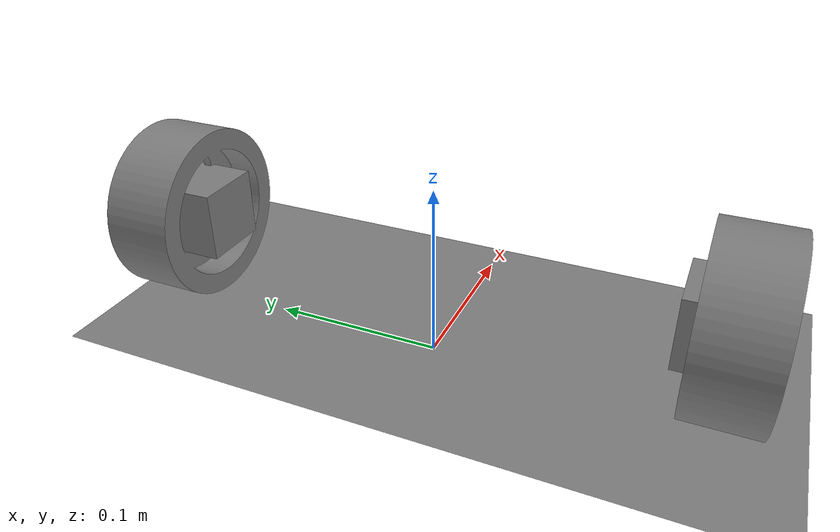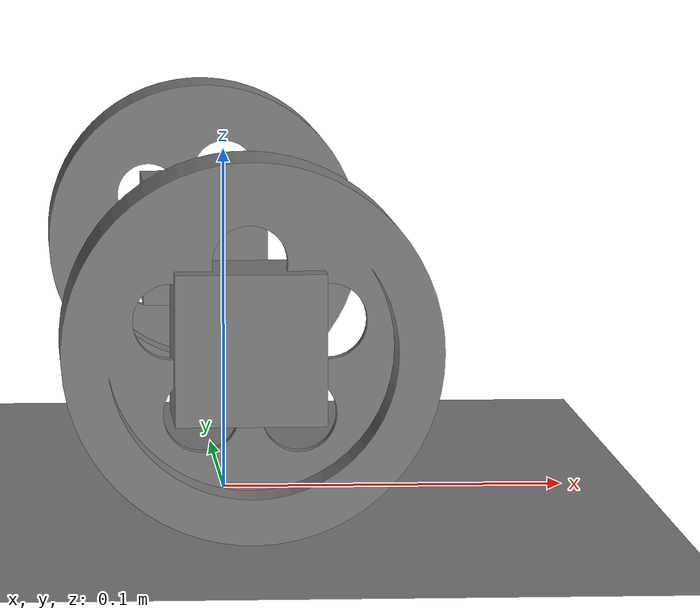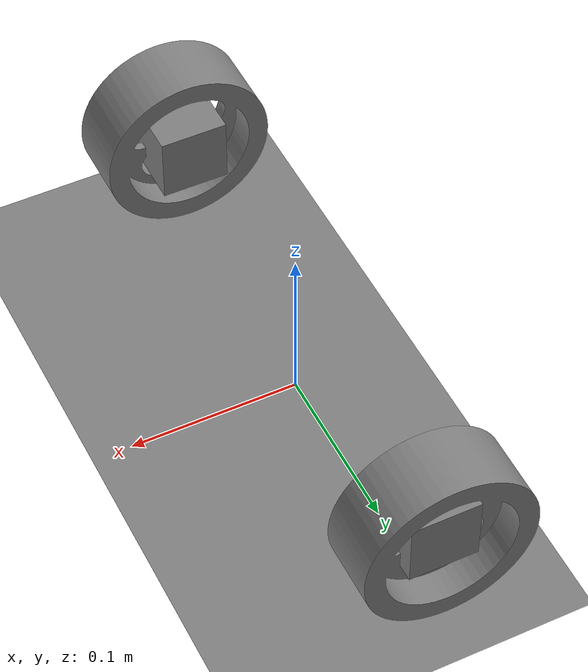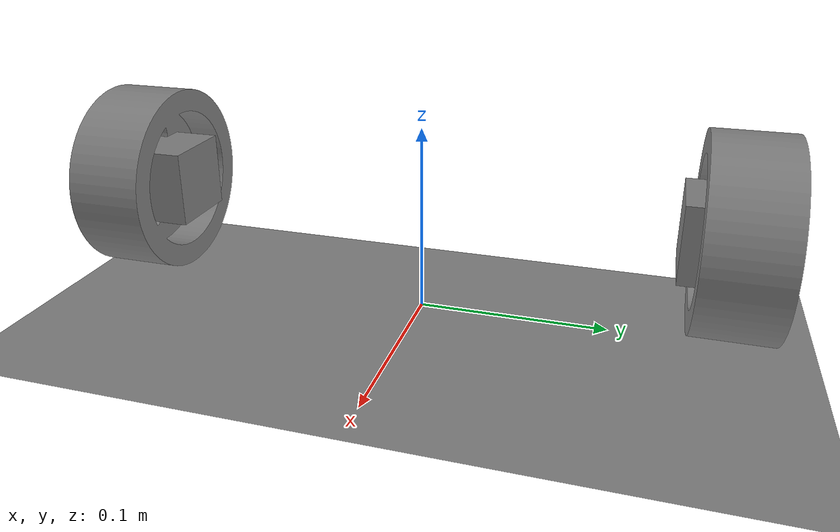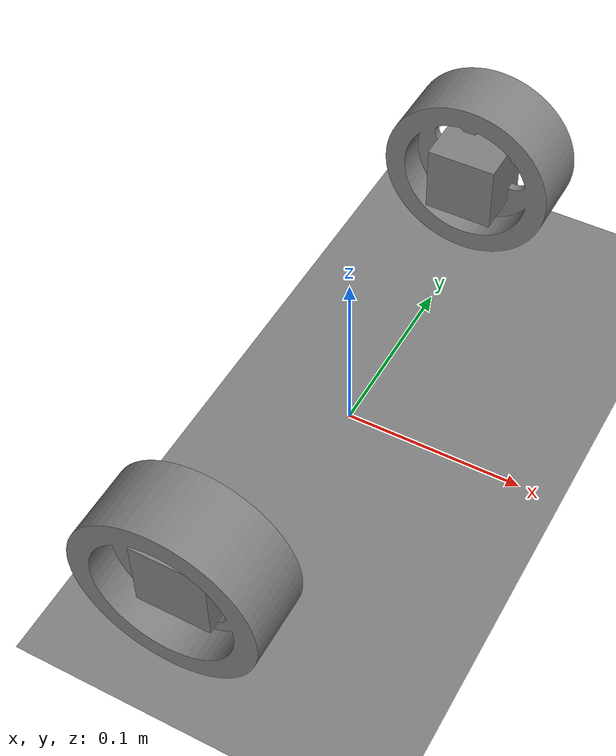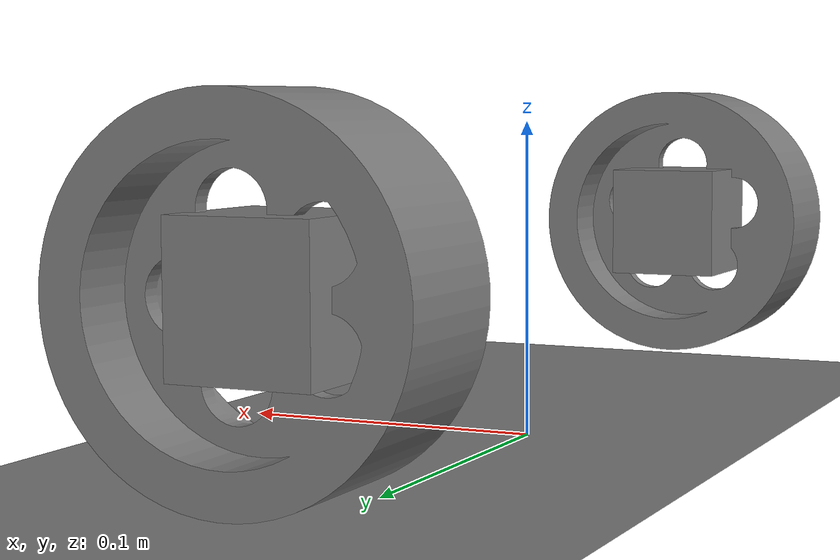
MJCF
<?xml version="1.0" encoding="utf-8"?>
<mujoco model="wheel_leg_phase18_wheel_probe">
  <compiler angle="radian" autolimits="true" meshdir="assets"/>
  <option timestep="0.002" gravity="0 0 -9.81" integrator="implicitfast"
          solver="Newton" cone="pyramidal" iterations="100" ls_iterations="50"/>

  <asset>
    <mesh name="left_wheel_mesh" file="zong_zhuang____left_wheel_1.stl"/>
    <mesh name="right_wheel_mesh" file="zong_zhuang____right_wheel_1.stl"/>
  </asset>

  <worldbody>
    <geom name="floor" type="plane" size="0 0 0.25" condim="3"
          contype="1" conaffinity="0" friction="1 0.005 0.0001"
          solref="0.02 1" solimp="0.9 0.95 0.001 0.5 2"/>

    <body name="left_probe_carriage" pos="0 0.15 0.06">
      <joint name="left_probe_x" type="slide" axis="1 0 0"/>
      <joint name="left_probe_y" type="slide" axis="0 1 0"/>
      <joint name="left_probe_z" type="slide" axis="0 0 1"/>
      <geom type="box" size="0.02 0.02 0.02" mass="1" contype="0" conaffinity="0"/>
      <body name="left_wheel_body" euler="-1.5707963267948966 0 0">
        <joint name="left_wheel_joint" type="hinge" axis="0 0 1"/>
        <geom name="left_wheel_collision" type="mesh" mesh="left_wheel_mesh"
              mass="0.3431" contype="0" conaffinity="1"/>
      </body>
    </body>

    <body name="right_probe_carriage" pos="0 -0.15 0.06">
      <joint name="right_probe_x" type="slide" axis="1 0 0"/>
      <joint name="right_probe_y" type="slide" axis="0 1 0"/>
      <joint name="right_probe_z" type="slide" axis="0 0 1"/>
      <geom type="box" size="0.02 0.02 0.02" mass="1" contype="0" conaffinity="0"/>
      <body name="right_wheel_body" euler="-1.5707963267948966 0 0">
        <joint name="right_wheel_joint" type="hinge" axis="0 0 1"/>
        <geom name="right_wheel_collision" type="mesh" mesh="right_wheel_mesh"
              mass="0.3431" contype="0" conaffinity="1"/>
      </body>
    </body>
  </worldbody>

  <actuator>
    <motor name="left_wheel_torque" joint="left_wheel_joint" gear="1"/>
    <motor name="right_wheel_torque" joint="right_wheel_joint" gear="1"/>
  </actuator>
</mujoco>
